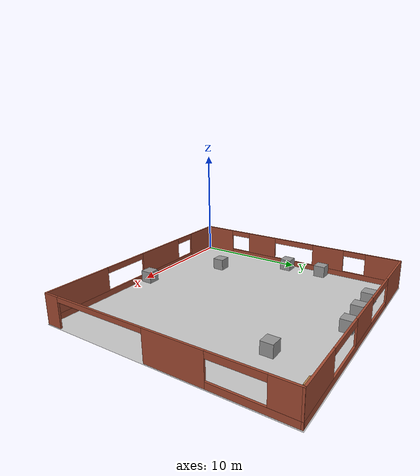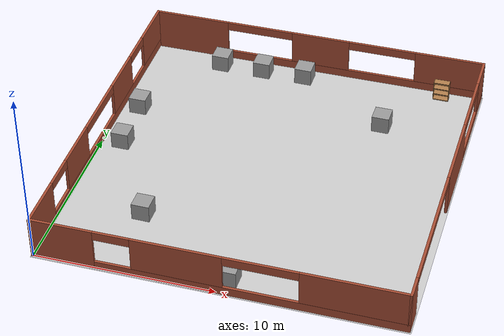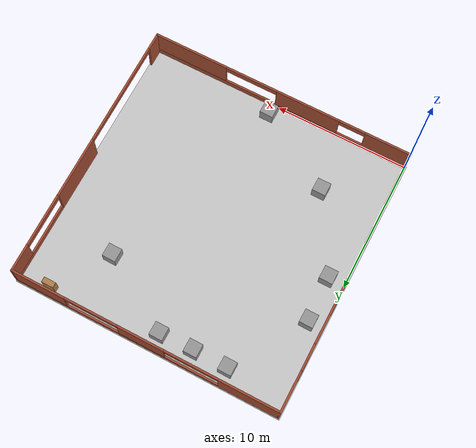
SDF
<sdf version="1.6">
 <world name="default">
  <scene>
   <ambient>0 0 0 1</ambient>
   <shadows>0</shadows>
   <grid>0</grid>
   <background>0.7 0.7 0.7 1</background>
  </scene>
  <light name="sun" type="directional">
   <pose>0 0 10 0 -0 0</pose>
   <diffuse>0.8 0.8 0.8 1</diffuse>
   <specular>0.2 0.2 0.2 1</specular>
   <attenuation>
    <range>1000</range>
    <constant>0.9</constant>
    <linear>0.01</linear>
    <quadratic>0.001</quadratic>
   </attenuation>
   <direction>-0.5 0.1 -0.9</direction>
  </light>
  <gravity>0 0 -9.8</gravity>
  <magnetic_field>6e-06 2.3e-05 -4.2e-05</magnetic_field>
  <atmosphere type="adiabatic"/>
  <physics name="default_physics" default="0" type="ode">
   <max_step_size>0.001</max_step_size>
   <real_time_factor>1</real_time_factor>
   <real_time_update_rate>1000</real_time_update_rate>
  </physics>
  <spherical_coordinates>
   <surface_model>EARTH_WGS84</surface_model>
   <latitude_deg>0</latitude_deg>
   <longitude_deg>0</longitude_deg>
   <elevation>0</elevation>
   <heading_deg>0</heading_deg>
  </spherical_coordinates>
  <model name="AVG_warehouse_new">
   <pose>10 10 0 0 -0 0</pose>
   <link name="Wall_14">
    <pose>0 -10 0 0 -0 0</pose>
    <visual name="Wall_14_Visual_0">
     <pose>-8.31217 0 1.25 0 -0 0</pose>
     <geometry><box><size>3.52565 0.15 2.5</size></box></geometry>
     <material>
      <script><uri>file://media/materials/scripts/gazebo.material</uri><name>Gazebo/Bricks</name></script>
      <ambient>1 1 1 1</ambient>
     </material>
     <meta><layer>0</layer></meta>
    </visual>
    <collision name="Wall_14_Collision_0">
     <geometry><box><size>3.52565 0.15 2.5</size></box></geometry>
     <pose>-8.31217 0 1.25 0 -0 0</pose>
    </collision>
    <visual name="Wall_14_Visual_1">
     <pose>1.76283 0 0.25 0 -0 0</pose>
     <geometry><box><size>16.6243 0.15 0.5</size></box></geometry>
     <material>
      <script><uri>file://media/materials/scripts/gazebo.material</uri><name>Gazebo/Bricks</name></script>
      <ambient>1 1 1 1</ambient>
     </material>
     <meta><layer>0</layer></meta>
    </visual>
    <collision name="Wall_14_Collision_1">
     <geometry><box><size>16.6243 0.15 0.5</size></box></geometry>
     <pose>1.76283 0 0.25 0 -0 0</pose>
    </collision>
    <visual name="Wall_14_Visual_2">
     <pose>-2.09703 0 1.5 0 -0 0</pose>
     <geometry><box><size>4.90463 0.15 2</size></box></geometry>
     <material>
      <script><uri>file://media/materials/scripts/gazebo.material</uri><name>Gazebo/Bricks</name></script>
      <ambient>1 1 1 1</ambient>
     </material>
     <meta><layer>0</layer></meta>
    </visual>
    <collision name="Wall_14_Collision_2">
     <geometry><box><size>4.90463 0.15 2</size></box></geometry>
     <pose>-2.09703 0 1.5 0 -0 0</pose>
    </collision>
    <visual name="Wall_14_Visual_3">
     <pose>7.21514 0 1.5 0 -0 0</pose>
     <geometry><box><size>5.71971 0.15 2</size></box></geometry>
     <material>
      <script><uri>file://media/materials/scripts/gazebo.material</uri><name>Gazebo/Bricks</name></script>
      <ambient>1 1 1 1</ambient>
     </material>
     <meta><layer>0</layer></meta>
    </visual>
    <collision name="Wall_14_Collision_3">
     <geometry><box><size>5.71971 0.15 2</size></box></geometry>
     <pose>7.21514 0 1.5 0 -0 0</pose>
    </collision>
    <visual name="Wall_14_Visual_4">
     <pose>-5.54935 0 2.25 0 -0 0</pose>
     <geometry><box><size>2 0.15 0.5</size></box></geometry>
     <material>
      <script><uri>file://media/materials/scripts/gazebo.material</uri><name>Gazebo/Bricks</name></script>
      <ambient>1 1 1 1</ambient>
     </material>
     <meta><layer>0</layer></meta>
    </visual>
    <collision name="Wall_14_Collision_4">
     <geometry><box><size>2 0.15 0.5</size></box></geometry>
     <pose>-5.54935 0 2.25 0 -0 0</pose>
    </collision>
    <visual name="Wall_14_Visual_5">
     <pose>2.35529 0 2.25 0 -0 0</pose>
     <geometry><box><size>4 0.15 0.5</size></box></geometry>
     <material>
      <script><uri>file://media/materials/scripts/gazebo.material</uri><name>Gazebo/Bricks</name></script>
      <ambient>1 1 1 1</ambient>
     </material>
     <meta><layer>0</layer></meta>
    </visual>
    <collision name="Wall_14_Collision_5">
     <geometry><box><size>4 0.15 0.5</size></box></geometry>
     <pose>2.35529 0 2.25 0 -0 0</pose>
    </collision>
   </link>
   <link name="Wall_16">
    <pose>-10 0 0 0 -0 1.5708</pose>
    <visual name="Wall_16_Visual_0">
     <pose>-8.5375 0 1.25 0 -0 0</pose>
     <geometry><box><size>3.075 0.15 2.5</size></box></geometry>
     <material>
      <script><uri>file://media/materials/scripts/gazebo.material</uri><name>Gazebo/Bricks</name></script>
      <ambient>1 1 1 1</ambient>
     </material>
     <meta><layer>0</layer></meta>
    </visual>
    <collision name="Wall_16_Collision_0">
     <geometry><box><size>3.075 0.15 2.5</size></box></geometry>
     <pose>-8.5375 0 1.25 0 -0 0</pose>
    </collision>
    <visual name="Wall_16_Visual_1">
     <pose>1.5375 0 0.25 0 -0 0</pose>
     <geometry><box><size>17.075 0.15 0.5</size></box></geometry>
     <material>
      <script><uri>file://media/materials/scripts/gazebo.material</uri><name>Gazebo/Bricks</name></script>
      <ambient>1 1 1 1</ambient>
     </material>
     <meta><layer>0</layer></meta>
    </visual>
    <collision name="Wall_16_Collision_1">
     <geometry><box><size>17.075 0.15 0.5</size></box></geometry>
     <pose>1.5375 0 0.25 0 -0 0</pose>
    </collision>
    <visual name="Wall_16_Visual_2">
     <pose>-3.5 0 1.5 0 -0 0</pose>
     <geometry><box><size>3 0.15 2</size></box></geometry>
     <material>
      <script><uri>file://media/materials/scripts/gazebo.material</uri><name>Gazebo/Bricks</name></script>
      <ambient>1 1 1 1</ambient>
     </material>
     <meta><layer>0</layer></meta>
    </visual>
    <collision name="Wall_16_Collision_2">
     <geometry><box><size>3 0.15 2</size></box></geometry>
     <pose>-3.5 0 1.5 0 -0 0</pose>
    </collision>
    <visual name="Wall_16_Visual_3">
     <pose>3.5 0 1.5 0 -0 0</pose>
     <geometry><box><size>3 0.15 2</size></box></geometry>
     <material>
      <script><uri>file://media/materials/scripts/gazebo.material</uri><name>Gazebo/Bricks</name></script>
      <ambient>1 1 1 1</ambient>
     </material>
     <meta><layer>0</layer></meta>
    </visual>
    <collision name="Wall_16_Collision_3">
     <geometry><box><size>3 0.15 2</size></box></geometry>
     <pose>3.5 0 1.5 0 -0 0</pose>
    </collision>
    <visual name="Wall_16_Visual_4">
     <pose>8.5375 0 1.5 0 -0 0</pose>
     <geometry><box><size>3.075 0.15 2</size></box></geometry>
     <material>
      <script><uri>file://media/materials/scripts/gazebo.material</uri><name>Gazebo/Bricks</name></script>
      <ambient>1 1 1 1</ambient>
     </material>
     <meta><layer>0</layer></meta>
    </visual>
    <collision name="Wall_16_Collision_4">
     <geometry><box><size>3.075 0.15 2</size></box></geometry>
     <pose>8.5375 0 1.5 0 -0 0</pose>
    </collision>
    <visual name="Wall_16_Visual_5">
     <pose>-6 0 2.25 0 -0 0</pose>
     <geometry><box><size>2 0.15 0.5</size></box></geometry>
     <material>
      <script><uri>file://media/materials/scripts/gazebo.material</uri><name>Gazebo/Bricks</name></script>
      <ambient>1 1 1 1</ambient>
     </material>
     <meta><layer>0</layer></meta>
    </visual>
    <collision name="Wall_16_Collision_5">
     <geometry><box><size>2 0.15 0.5</size></box></geometry>
     <pose>-6 0 2.25 0 -0 0</pose>
    </collision>
    <visual name="Wall_16_Visual_6">
     <pose>0 0 2.25 0 -0 0</pose>
     <geometry><box><size>4 0.15 0.5</size></box></geometry>
     <material>
      <script><uri>file://media/materials/scripts/gazebo.material</uri><name>Gazebo/Bricks</name></script>
      <ambient>1 1 1 1</ambient>
     </material>
     <meta><layer>0</layer></meta>
    </visual>
    <collision name="Wall_16_Collision_6">
     <geometry><box><size>4 0.15 0.5</size></box></geometry>
     <pose>0 0 2.25 0 -0 0</pose>
    </collision>
    <visual name="Wall_16_Visual_7">
     <pose>6 0 2.25 0 -0 0</pose>
     <geometry><box><size>2 0.15 0.5</size></box></geometry>
     <material>
      <script><uri>file://media/materials/scripts/gazebo.material</uri><name>Gazebo/Bricks</name></script>
      <ambient>1 1 1 1</ambient>
     </material>
     <meta><layer>0</layer></meta>
    </visual>
    <collision name="Wall_16_Collision_7">
     <geometry><box><size>2 0.15 0.5</size></box></geometry>
     <pose>6 0 2.25 0 -0 0</pose>
    </collision>
   </link>
   <link name="Wall_18">
    <pose>0 10 0 0 -0 0</pose>
    <visual name="Wall_18_Visual_0">
     <pose>-7.80098 0 1.25 0 -0 0</pose>
     <geometry><box><size>4.54804 0.15 2.5</size></box></geometry>
     <material>
      <script><uri>file://media/materials/scripts/gazebo.material</uri><name>Gazebo/Bricks</name></script>
      <ambient>1 1 1 1</ambient>
     </material>
     <meta><layer>0</layer></meta>
    </visual>
    <collision name="Wall_18_Collision_0">
     <geometry><box><size>4.54804 0.15 2.5</size></box></geometry>
     <pose>-7.80098 0 1.25 0 -0 0</pose>
    </collision>
    <visual name="Wall_18_Visual_1">
     <pose>2.27402 0 0.25 0 -0 0</pose>
     <geometry><box><size>15.602 0.15 0.5</size></box></geometry>
     <material>
      <script><uri>file://media/materials/scripts/gazebo.material</uri><name>Gazebo/Bricks</name></script>
      <ambient>1 1 1 1</ambient>
     </material>
     <meta><layer>0</layer></meta>
    </visual>
    <collision name="Wall_18_Collision_1">
     <geometry><box><size>15.602 0.15 0.5</size></box></geometry>
     <pose>2.27402 0 0.25 0 -0 0</pose>
    </collision>
    <visual name="Wall_18_Visual_2">
     <pose>0.216086 0 1.5 0 -0 0</pose>
     <geometry><box><size>3.4861 0.15 2</size></box></geometry>
     <material>
      <script><uri>file://media/materials/scripts/gazebo.material</uri><name>Gazebo/Bricks</name></script>
      <ambient>1 1 1 1</ambient>
     </material>
     <meta><layer>0</layer></meta>
    </visual>
    <collision name="Wall_18_Collision_2">
     <geometry><box><size>3.4861 0.15 2</size></box></geometry>
     <pose>0.216086 0 1.5 0 -0 0</pose>
    </collision>
    <visual name="Wall_18_Visual_3">
     <pose>8.01707 0 1.5 0 -0 0</pose>
     <geometry><box><size>4.11587 0.15 2</size></box></geometry>
     <material>
      <script><uri>file://media/materials/scripts/gazebo.material</uri><name>Gazebo/Bricks</name></script>
      <ambient>1 1 1 1</ambient>
     </material>
     <meta><layer>0</layer></meta>
    </visual>
    <collision name="Wall_18_Collision_3">
     <geometry><box><size>4.11587 0.15 2</size></box></geometry>
     <pose>8.01707 0 1.5 0 -0 0</pose>
    </collision>
    <visual name="Wall_18_Visual_4">
     <pose>-3.52696 0 2.25 0 -0 0</pose>
     <geometry><box><size>4 0.15 0.5</size></box></geometry>
     <material>
      <script><uri>file://media/materials/scripts/gazebo.material</uri><name>Gazebo/Bricks</name></script>
      <ambient>1 1 1 1</ambient>
     </material>
     <meta><layer>0</layer></meta>
    </visual>
    <collision name="Wall_18_Collision_4">
     <geometry><box><size>4 0.15 0.5</size></box></geometry>
     <pose>-3.52696 0 2.25 0 -0 0</pose>
    </collision>
    <visual name="Wall_18_Visual_5">
     <pose>3.95913 0 2.25 0 -0 0</pose>
     <geometry><box><size>4 0.15 0.5</size></box></geometry>
     <material>
      <script><uri>file://media/materials/scripts/gazebo.material</uri><name>Gazebo/Bricks</name></script>
      <ambient>1 1 1 1</ambient>
     </material>
     <meta><layer>0</layer></meta>
    </visual>
    <collision name="Wall_18_Collision_5">
     <geometry><box><size>4 0.15 0.5</size></box></geometry>
     <pose>3.95913 0 2.25 0 -0 0</pose>
    </collision>
   </link>
   <link name="Wall_20">
    <pose>10 0 0 0 -0 1.5708</pose>
    <visual name="Wall_20_Visual_0">
     <pose>-9.39842 0 1.25 0 -0 0</pose>
     <geometry><box><size>1.35316 0.15 2.5</size></box></geometry>
     <material>
      <script><uri>file://media/materials/scripts/gazebo.material</uri><name>Gazebo/Bricks</name></script>
      <ambient>1 1 1 1</ambient>
     </material>
     <meta><layer>0</layer></meta>
    </visual>
    <collision name="Wall_20_Collision_0">
     <geometry><box><size>1.35316 0.15 2.5</size></box></geometry>
     <pose>-9.39842 0 1.25 0 -0 0</pose>
    </collision>
    <visual name="Wall_20_Visual_1">
     <pose>1.63908 0 1.25 0 -0 0</pose>
     <geometry><box><size>4.72184 0.15 2.5</size></box></geometry>
     <material>
      <script><uri>file://media/materials/scripts/gazebo.material</uri><name>Gazebo/Bricks</name></script>
      <ambient>1 1 1 1</ambient>
     </material>
     <meta><layer>0</layer></meta>
    </visual>
    <collision name="Wall_20_Collision_1">
     <geometry><box><size>4.72184 0.15 2.5</size></box></geometry>
     <pose>1.63908 0 1.25 0 -0 0</pose>
    </collision>
    <visual name="Wall_20_Visual_2">
     <pose>7.0375 0 0.25 0 -0 0</pose>
     <geometry><box><size>6.075 0.15 0.5</size></box></geometry>
     <material>
      <script><uri>file://media/materials/scripts/gazebo.material</uri><name>Gazebo/Bricks</name></script>
      <ambient>1 1 1 1</ambient>
     </material>
     <meta><layer>0</layer></meta>
    </visual>
    <collision name="Wall_20_Collision_2">
     <geometry><box><size>6.075 0.15 0.5</size></box></geometry>
     <pose>7.0375 0 0.25 0 -0 0</pose>
    </collision>
    <visual name="Wall_20_Visual_3">
     <pose>9.0375 0 1.5 0 -0 0</pose>
     <geometry><box><size>2.075 0.15 2</size></box></geometry>
     <material>
      <script><uri>file://media/materials/scripts/gazebo.material</uri><name>Gazebo/Bricks</name></script>
      <ambient>1 1 1 1</ambient>
     </material>
     <meta><layer>0</layer></meta>
    </visual>
    <collision name="Wall_20_Collision_3">
     <geometry><box><size>2.075 0.15 2</size></box></geometry>
     <pose>9.0375 0 1.5 0 -0 0</pose>
    </collision>
    <visual name="Wall_20_Visual_4">
     <pose>6 0 2.25 0 -0 0</pose>
     <geometry><box><size>4 0.15 0.5</size></box></geometry>
     <material>
      <script><uri>file://media/materials/scripts/gazebo.material</uri><name>Gazebo/Bricks</name></script>
      <ambient>1 1 1 1</ambient>
     </material>
     <meta><layer>0</layer></meta>
    </visual>
    <collision name="Wall_20_Collision_4">
     <geometry><box><size>4 0.15 0.5</size></box></geometry>
     <pose>6 0 2.25 0 -0 0</pose>
    </collision>
    <visual name="Wall_20_Visual_5">
     <pose>-4.72184 0 2.3 0 -0 0</pose>
     <geometry><box><size>8 0.15 0.4</size></box></geometry>
     <material>
      <script><uri>file://media/materials/scripts/gazebo.material</uri><name>Gazebo/Bricks</name></script>
      <ambient>1 1 1 1</ambient>
     </material>
     <meta><layer>0</layer></meta>
    </visual>
    <collision name="Wall_20_Collision_5">
     <geometry><box><size>8 0.15 0.4</size></box></geometry>
     <pose>-4.72184 0 2.3 0 -0 0</pose>
    </collision>
   </link>
   <static>1</static>
  </model>
  <model name="bookshelf">
   <static>1</static>
   <link name="link">
    <inertial><mass>1</mass></inertial>
    <collision name="back">
     <pose>0 0.005 0.6 0 -0 0</pose>
     <geometry><box><size>0.9 0.01 1.2</size></box></geometry>
    </collision>
    <visual name="visual1">
     <pose>0 0.005 0.6 0 -0 0</pose>
     <geometry><box><size>0.9 0.01 1.2</size></box></geometry>
     <material>
      <script><uri>file://media/materials/scripts/gazebo.material</uri><name>Gazebo/Wood</name></script>
     </material>
    </visual>
    <collision name="left_side">
     <pose>0.45 -0.195 0.6 0 -0 0</pose>
     <geometry><box><size>0.02 0.4 1.2</size></box></geometry>
    </collision>
    <visual name="visual2">
     <pose>0.45 -0.195 0.6 0 -0 0</pose>
     <geometry><box><size>0.02 0.4 1.2</size></box></geometry>
     <material>
      <script><uri>file://media/materials/scripts/gazebo.material</uri><name>Gazebo/Wood</name></script>
     </material>
    </visual>
    <collision name="right_side">
     <pose>-0.45 -0.195 0.6 0 -0 0</pose>
     <geometry><box><size>0.02 0.4 1.2</size></box></geometry>
    </collision>
    <visual name="visual3">
     <pose>-0.45 -0.195 0.6 0 -0 0</pose>
     <geometry><box><size>0.02 0.4 1.2</size></box></geometry>
     <material>
      <script><uri>file://media/materials/scripts/gazebo.material</uri><name>Gazebo/Wood</name></script>
     </material>
    </visual>
    <collision name="bottom">
     <pose>0 -0.195 0.03 0 -0 0</pose>
     <geometry><box><size>0.88 0.4 0.06</size></box></geometry>
    </collision>
    <visual name="visual4">
     <pose>0 -0.195 0.03 0 -0 0</pose>
     <geometry><box><size>0.88 0.4 0.06</size></box></geometry>
     <material>
      <script><uri>file://media/materials/scripts/gazebo.material</uri><name>Gazebo/Wood</name></script>
     </material>
    </visual>
    <collision name="top">
     <pose>0 -0.195 1.19 0 -0 0</pose>
     <geometry><box><size>0.88 0.4 0.02</size></box></geometry>
    </collision>
    <visual name="visual5">
     <pose>0 -0.195 1.19 0 -0 0</pose>
     <geometry><box><size>0.88 0.4 0.02</size></box></geometry>
     <material>
      <script><uri>file://media/materials/scripts/gazebo.material</uri><name>Gazebo/Wood</name></script>
     </material>
    </visual>
    <collision name="low_shelf">
     <pose>0 -0.195 0.43 0 -0 0</pose>
     <geometry><box><size>0.88 0.4 0.02</size></box></geometry>
    </collision>
    <visual name="visual6">
     <pose>0 -0.195 0.43 0 -0 0</pose>
     <geometry><box><size>0.88 0.4 0.02</size></box></geometry>
     <material>
      <script><uri>file://media/materials/scripts/gazebo.material</uri><name>Gazebo/Wood</name></script>
     </material>
    </visual>
    <collision name="high_shelf">
     <pose>0 -0.195 0.8 0 -0 0</pose>
     <geometry><box><size>0.88 0.4 0.02</size></box></geometry>
    </collision>
    <visual name="visual7">
     <pose>0 -0.195 0.8 0 -0 0</pose>
     <geometry><box><size>0.88 0.4 0.02</size></box></geometry>
     <material>
      <script><uri>file://media/materials/scripts/gazebo.material</uri><name>Gazebo/Wood</name></script>
     </material>
    </visual>
   </link>
   <pose>17.7584 19.5439 0 0 -0 0</pose>
  </model>
  <model name="unit_box_1_clone_clone_clone_0_clone">
   <pose>4.5 4.5 0.643996 2.7e-05 -2.8e-05 -0.010115</pose>
   <link name="link">
    <inertial>
     <mass>1</mass>
     <inertia>
      <ixx>0.166667</ixx>
      <ixy>0</ixy>
      <ixz>0</ixz>
      <iyy>0.166667</iyy>
      <iyz>0</iyz>
      <izz>0.166667</izz>
     </inertia>
    </inertial>
    <collision name="collision"><geometry><box><size>1 1 1</size></box></geometry></collision>
    <visual name="visual">
     <geometry><box><size>1 1 1</size></box></geometry>
     <material>
      <script><name>Gazebo/Grey</name><uri>file://media/materials/scripts/gazebo.material</uri></script>
     </material>
    </visual>
   </link>
  </model>
  <model name="unit_box_1_clone_clone_clone_clone">
   <pose>1.28081 10.0001 0.643997 1.2e-05 -3e-06 -0.006894</pose>
   <link name="link">
    <inertial>
     <mass>1</mass>
     <inertia>
      <ixx>0.166667</ixx>
      <ixy>0</ixy>
      <ixz>0</ixz>
      <iyy>0.166667</iyy>
      <iyz>0</iyz>
      <izz>0.166667</izz>
     </inertia>
    </inertial>
    <collision name="collision"><geometry><box><size>1 1 1</size></box></geometry></collision>
    <visual name="visual">
     <geometry><box><size>1 1 1</size></box></geometry>
     <material>
      <script><name>Gazebo/Grey</name><uri>file://media/materials/scripts/gazebo.material</uri></script>
     </material>
    </visual>
   </link>
  </model>
  <model name="unit_box_1_clone_clone_clone_clone_0">
   <pose>1.12857 13.344 0.644007 1.57079 -1.3e-05 -0.006617</pose>
   <link name="link">
    <inertial>
     <mass>1</mass>
     <inertia>
      <ixx>0.166667</ixx>
      <ixy>0</ixy>
      <ixz>0</ixz>
      <iyy>0.166667</iyy>
      <iyz>0</iyz>
      <izz>0.166667</izz>
     </inertia>
    </inertial>
    <collision name="collision"><geometry><box><size>1 1 1</size></box></geometry></collision>
    <visual name="visual">
     <geometry><box><size>1 1 1</size></box></geometry>
     <material>
      <script><name>Gazebo/Grey</name><uri>file://media/materials/scripts/gazebo.material</uri></script>
     </material>
    </visual>
   </link>
  </model>
  <model name="unit_box_1_clone_clone_clone_0_clone_clone">
   <pose>15.0479 15.5 0.643983 -4.5e-05 -0 -0.010425</pose>
   <link name="link">
    <inertial>
     <mass>1</mass>
     <inertia>
      <ixx>0.166667</ixx>
      <ixy>0</ixy>
      <ixz>0</ixz>
      <iyy>0.166667</iyy>
      <iyz>0</iyz>
      <izz>0.166667</izz>
     </inertia>
    </inertial>
    <collision name="collision"><geometry><box><size>1 1 1</size></box></geometry></collision>
    <visual name="visual">
     <geometry><box><size>1 1 1</size></box></geometry>
     <material>
      <script><name>Gazebo/Grey</name><uri>file://media/materials/scripts/gazebo.material</uri></script>
     </material>
    </visual>
   </link>
  </model>
  <model name="unit_box_1_clone_clone_clone_0_clone_clone_0">
   <pose>4.46366 18.7236 0.643998 2e-06 5e-06 -0.009706</pose>
   <link name="link">
    <inertial>
     <mass>1</mass>
     <inertia>
      <ixx>0.166667</ixx>
      <ixy>0</ixy>
      <ixz>0</ixz>
      <iyy>0.166667</iyy>
      <iyz>0</iyz>
      <izz>0.166667</izz>
     </inertia>
    </inertial>
    <collision name="collision"><geometry><box><size>1 1 1</size></box></geometry></collision>
    <visual name="visual">
     <geometry><box><size>1 1 1</size></box></geometry>
     <material>
      <script><name>Gazebo/Grey</name><uri>file://media/materials/scripts/gazebo.material</uri></script>
     </material>
    </visual>
   </link>
  </model>
  <model name="unit_box_1_clone_clone_clone_0_clone_clone_1">
   <pose>7.03113 18.7185 0.644 0 0 -0.0085</pose>
   <link name="link">
    <inertial>
     <mass>1</mass>
     <inertia>
      <ixx>0.166667</ixx>
      <ixy>0</ixy>
      <ixz>0</ixz>
      <iyy>0.166667</iyy>
      <iyz>0</iyz>
      <izz>0.166667</izz>
     </inertia>
    </inertial>
    <collision name="collision"><geometry><box><size>1 1 1</size></box></geometry></collision>
    <visual name="visual">
     <geometry><box><size>1 1 1</size></box></geometry>
     <material>
      <script><name>Gazebo/Grey</name><uri>file://media/materials/scripts/gazebo.material</uri></script>
     </material>
    </visual>
   </link>
  </model>
  <model name="unit_box_1_clone_clone_clone_0_clone_clone_2">
   <pose>9.57974 18.7866 0.644012 -2.4e-05 4e-06 -0.009929</pose>
   <link name="link">
    <inertial>
     <mass>1</mass>
     <inertia>
      <ixx>0.166667</ixx>
      <ixy>0</ixy>
      <ixz>0</ixz>
      <iyy>0.166667</iyy>
      <iyz>0</iyz>
      <izz>0.166667</izz>
     </inertia>
    </inertial>
    <collision name="collision"><geometry><box><size>1 1 1</size></box></geometry></collision>
    <visual name="visual">
     <geometry><box><size>1 1 1</size></box></geometry>
     <material>
      <script><name>Gazebo/Grey</name><uri>file://media/materials/scripts/gazebo.material</uri></script>
     </material>
    </visual>
   </link>
  </model>
  <model name="unit_box_1_clone_clone_clone_0_clone_clone_clone">
   <pose>10.4376 0.873026 0.643993 -1.5e-05 1.1e-05 -0.009949</pose>
   <link name="link">
    <inertial>
     <mass>1</mass>
     <inertia>
      <ixx>0.166667</ixx>
      <ixy>0</ixy>
      <ixz>0</ixz>
      <iyy>0.166667</iyy>
      <iyz>0</iyz>
      <izz>0.166667</izz>
     </inertia>
    </inertial>
    <collision name="collision"><geometry><box><size>1 1 1</size></box></geometry></collision>
    <visual name="visual">
     <geometry><box><size>1 1 1</size></box></geometry>
     <material>
      <script><name>Gazebo/Grey</name><uri>file://media/materials/scripts/gazebo.material</uri></script>
     </material>
    </visual>
   </link>
  </model>
  <model name="ground_plane_0">
   <static>1</static>
   <link name="link">
    <collision name="collision">
     <geometry><plane><normal>0 0 1</normal><size>20.15 20.15</size></plane></geometry>
     <surface><friction><ode><mu>100</mu><mu2>50</mu2></ode></friction></surface>
    </collision>
    <visual name="visual">
     <cast_shadows>0</cast_shadows>
     <geometry><plane><normal>0 0 1</normal><size>20.15 20.15</size></plane></geometry>
     <material><script><uri>file://warehouse_20m.material</uri><name>avg_new</name></script></material>
    </visual>
   </link>
   <pose>10 10 0 0 0 -1.576</pose>
  </model>
 </world>
</sdf>
